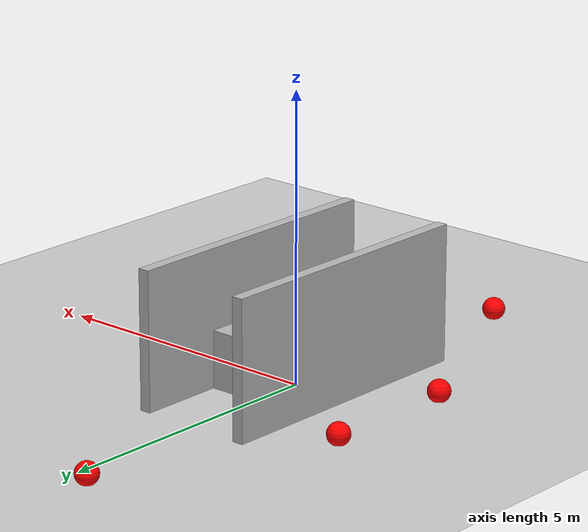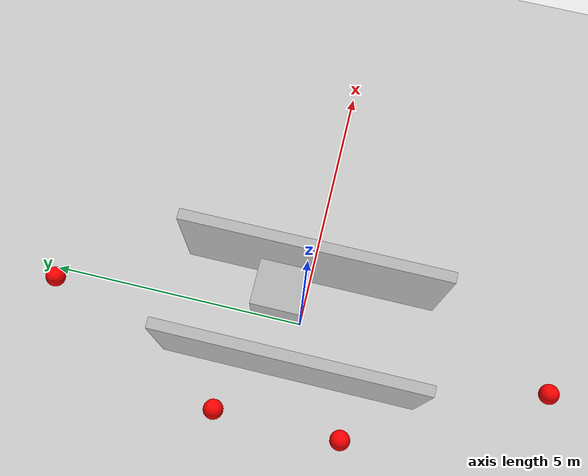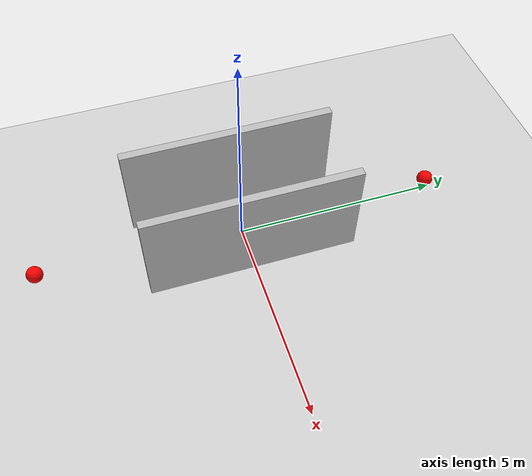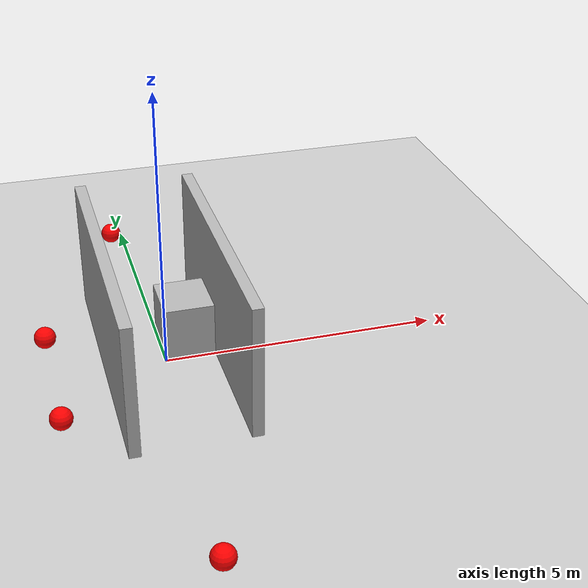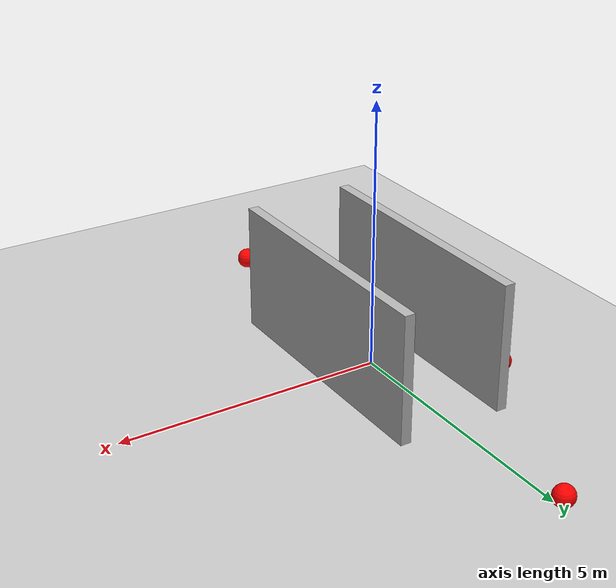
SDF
<sdf version="1.6">
 <world name="world">
  <plugin name="gazebo_ros_state" filename="libgazebo_ros_state.so">
   <ros>
    <namespace>/demo</namespace>
    <remapping>model_states:=model_states_demo</remapping>
    <remapping>link_states:=link_states_demo</remapping>
   </ros>
   <update_rate>1.0</update_rate>
  </plugin>
  <gravity>0 0 -9.8</gravity>
  <physics default="0" name="default_physics" type="ode">
   <max_step_size>0.001</max_step_size>
   <real_time_factor>1</real_time_factor>
   <real_time_update_rate>1000</real_time_update_rate>
  </physics>
  <scene><ambient>0.6 0.6 0.6 1</ambient><background>0.4 0.4 0.4 1</background><shadows>false</shadows></scene>
  <include><uri>model://sun</uri></include>
  <include><uri>model://ground_plane</uri><pose>0 0 -0.1 0 -0 0</pose></include>
  <model name="left_corridor_wall">
   <allow_auto_disable>false</allow_auto_disable>
   <static>true</static>
   <pose>1 0 1.2 0 0 0</pose>
   <static>true</static>
   <link name="left_corridor_wall_link">
    <collision name="left_corridor_wall_collision">
     <geometry><box><size>0.2 5 2.4</size></box></geometry>
    </collision>
    <visual name="left_corridor_wall_visual"><geometry><box><size>0.2 5 2.4</size></box></geometry></visual>
   </link>
  </model>
  <model name="right_corridor_wall">
   <allow_auto_disable>false</allow_auto_disable>
   <static>true</static>
   <pose>-1 0 1.2 0 0 0</pose>
   <static>true</static>
   <link name="right_corridor_wall_link">
    <collision name="right_corridor_wall_collision">
     <geometry><box><size>0.2 5 2.4</size></box></geometry>
    </collision>
    <visual name="right_corridor_wall_visual"><geometry><box><size>0.2 5 2.4</size></box></geometry></visual>
   </link>
  </model>
  <model name="obstacle">
   <allow_auto_disable>false</allow_auto_disable>
   <static>true</static>
   <pose>0.5 0.5 0.5 0 0 0</pose>
   <static>true</static>
   <link name="obstacle_link">
    <collision name="obstacle_collision"><geometry><box><size>1 1 1</size></box></geometry></collision>
    <visual name="obstacle_visual"><geometry><box><size>1 1 1</size></box></geometry></visual>
   </link>
  </model>
  <model name="actor1_collision_model">
   <allow_auto_disable>false</allow_auto_disable>
   <pose>0 0 -100 0 0 0</pose>
   <static>true</static>
   <link name="link">
    <collision name="link">
     <pose>0 -0.18 0.05 0 -1.5707963267948966 0</pose>
     <geometry><box><size>0.44 1.40 0.60</size></box></geometry>
    </collision>
   </link>
  </model>
  <model name="waypoint1">
   <allow_auto_disable>false</allow_auto_disable>
   <static>true</static>
   <pose>-0.2 -5 0.05 0 0 0</pose>
   <static>true</static>
   <link name="waypoint1_link">
    <collision name="waypoint1_collision"><geometry><sphere><radius>0.01</radius></sphere></geometry></collision>
    <visual name="waypoint1_visual">
     <geometry><sphere><radius>0.2</radius></sphere></geometry>
     <material><diffuse>1 0 0 1</diffuse><ambient>1 0 0 1</ambient></material>
    </visual>
   </link>
  </model>
  <model name="waypoint3">
   <allow_auto_disable>false</allow_auto_disable>
   <static>true</static>
   <pose>-2 -1.25 0.05 0 0 0</pose>
   <static>true</static>
   <link name="waypoint3_link">
    <collision name="waypoint3_collision"><geometry><sphere><radius>0.01</radius></sphere></geometry></collision>
    <visual name="waypoint3_visual">
     <geometry><sphere><radius>0.2</radius></sphere></geometry>
     <material><diffuse>1 0 0 1</diffuse><ambient>1 0 0 1</ambient></material>
    </visual>
   </link>
  </model>
  <model name="waypoint4">
   <allow_auto_disable>false</allow_auto_disable>
   <static>true</static>
   <pose>-2 1.25 0.05 0 0 0</pose>
   <static>true</static>
   <link name="waypoint4_link">
    <collision name="waypoint4_collision"><geometry><sphere><radius>0.01</radius></sphere></geometry></collision>
    <visual name="waypoint4_visual">
     <geometry><sphere><radius>0.2</radius></sphere></geometry>
     <material><diffuse>1 0 0 1</diffuse><ambient>1 0 0 1</ambient></material>
    </visual>
   </link>
  </model>
  <model name="waypoint6">
   <allow_auto_disable>false</allow_auto_disable>
   <static>true</static>
   <pose>-0.2 5 0.05 0 0 0</pose>
   <static>true</static>
   <link name="waypoint6_link">
    <collision name="waypoint6_collision"><geometry><sphere><radius>0.01</radius></sphere></geometry></collision>
    <visual name="waypoint6_visual">
     <geometry><sphere><radius>0.2</radius></sphere></geometry>
     <material><diffuse>1 0 0 1</diffuse><ambient>1 0 0 1</ambient></material>
    </visual>
   </link>
  </model>
 </world>
</sdf>
